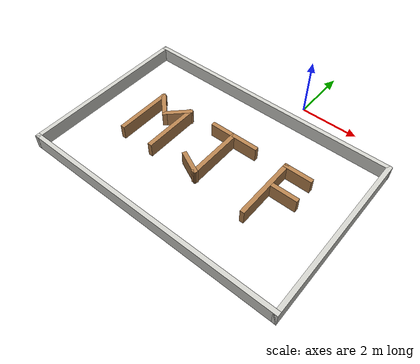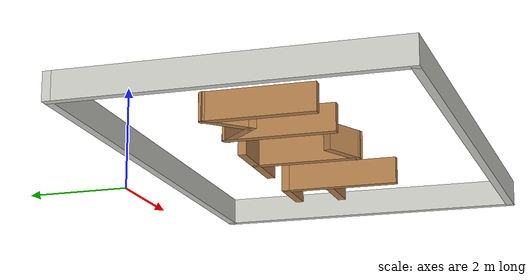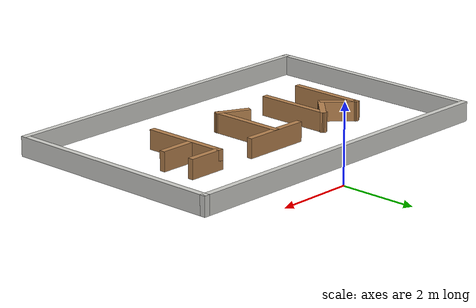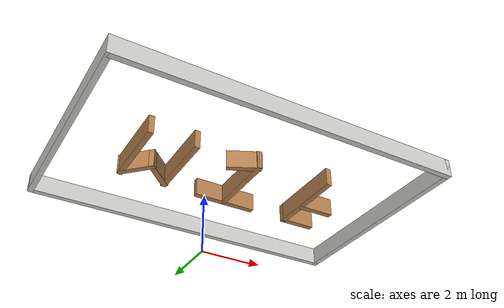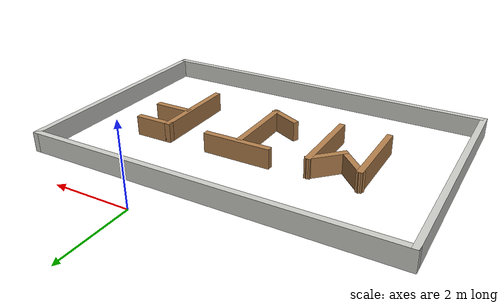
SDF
<?xml version='1.0'?>
<sdf version='1.7'>
  <model name='Maze_3'>
    <pose>-1.01 -3.4425 0 0 -0 0</pose>
    <link name='Wall_0'>
      <collision name='Wall_0_Collision'>
        <geometry>
          <box>
            <size>6 0.15 0.5</size>
          </box>
        </geometry>
        <pose>0 0 0.25 0 -0 0</pose>
      </collision>
      <visual name='Wall_0_Visual'>
        <pose>0 0 0.25 0 -0 0</pose>
        <geometry>
          <box>
            <size>6 0.15 0.5</size>
          </box>
        </geometry>
        <material>
          <script>
            <uri>file://media/materials/scripts/gazebo.material</uri>
            <name>Gazebo/CeilingTiled</name>
          </script>
          <ambient>1 1 1 1</ambient>
        </material>
        <meta>
          <layer>0</layer>
        </meta>
      </visual>
      <pose>-4.55 -0.4425 0 0 -0 -1.5708</pose>
    </link>
    <link name='Wall_1'>
      <collision name='Wall_1_Collision'>
        <geometry>
          <box>
            <size>9.25 0.15 0.5</size>
          </box>
        </geometry>
        <pose>0 0 0.25 0 -0 0</pose>
      </collision>
      <visual name='Wall_1_Visual'>
        <pose>0 0 0.25 0 -0 0</pose>
        <geometry>
          <box>
            <size>9.25 0.15 0.5</size>
          </box>
        </geometry>
        <material>
          <script>
            <uri>file://media/materials/scripts/gazebo.material</uri>
            <name>Gazebo/CeilingTiled</name>
          </script>
          <ambient>1 1 1 1</ambient>
        </material>
        <meta>
          <layer>0</layer>
        </meta>
      </visual>
      <pose>0 -3.3675 0 0 -0 0</pose>
    </link>
    <link name='Wall_18'>
      <collision name='Wall_18_Collision'>
        <geometry>
          <box>
            <size>2 0.15 0.5</size>
          </box>
        </geometry>
        <pose>0 0 0.25 0 -0 0</pose>
      </collision>
      <visual name='Wall_18_Visual'>
        <pose>0 0 0.25 0 -0 0</pose>
        <geometry>
          <box>
            <size>2 0.15 0.5</size>
          </box>
        </geometry>
        <material>
          <script>
            <uri>file://media/materials/scripts/gazebo.material</uri>
            <name>Gazebo/Wood</name>
          </script>
          <ambient>1 1 1 1</ambient>
        </material>
        <meta>
          <layer>0</layer>
        </meta>
      </visual>
      <pose>-2.8 -0.4125 0 0 -0 1.5708</pose>
    </link>
    <link name='Wall_19'>
      <collision name='Wall_19_Collision'>
        <geometry>
          <box>
            <size>1 0.15 0.5</size>
          </box>
        </geometry>
        <pose>0 0 0.25 0 -0 0</pose>
      </collision>
      <visual name='Wall_19_Visual'>
        <pose>0 0 0.25 0 -0 0</pose>
        <geometry>
          <box>
            <size>1 0.15 0.5</size>
          </box>
        </geometry>
        <material>
          <script>
            <uri>file://media/materials/scripts/gazebo.material</uri>
            <name>Gazebo/Wood</name>
          </script>
          <ambient>1 1 1 1</ambient>
        </material>
        <meta>
          <layer>0</layer>
        </meta>
      </visual>
      <pose>-2.4995 0.212 0 0 -0 -0.785398</pose>
    </link>
    <link name='Wall_2'>
      <collision name='Wall_2_Collision'>
        <geometry>
          <box>
            <size>6 0.15 0.5</size>
          </box>
        </geometry>
        <pose>0 0 0.25 0 -0 0</pose>
      </collision>
      <visual name='Wall_2_Visual'>
        <pose>0 0 0.25 0 -0 0</pose>
        <geometry>
          <box>
            <size>6 0.15 0.5</size>
          </box>
        </geometry>
        <material>
          <script>
            <uri>file://media/materials/scripts/gazebo.material</uri>
            <name>Gazebo/CeilingTiled</name>
          </script>
          <ambient>1 1 1 1</ambient>
        </material>
        <meta>
          <layer>0</layer>
        </meta>
      </visual>
      <pose>4.55 -0.4425 0 0 -0 1.5708</pose>
    </link>
    <link name='Wall_20'>
      <collision name='Wall_20_Collision'>
        <geometry>
          <box>
            <size>1 0.15 0.5</size>
          </box>
        </geometry>
        <pose>0 0 0.25 0 -0 0</pose>
      </collision>
      <visual name='Wall_20_Visual'>
        <pose>0 0 0.25 0 -0 0</pose>
        <geometry>
          <box>
            <size>1 0.15 0.5</size>
          </box>
        </geometry>
        <material>
          <script>
            <uri>file://media/materials/scripts/gazebo.material</uri>
            <name>Gazebo/Wood</name>
          </script>
          <ambient>1 1 1 1</ambient>
        </material>
        <meta>
          <layer>0</layer>
        </meta>
      </visual>
      <pose>-1.8985 0.212 0 0 -0 0.785398</pose>
    </link>
    <link name='Wall_21'>
      <collision name='Wall_21_Collision'>
        <geometry>
          <box>
            <size>2 0.15 0.5</size>
          </box>
        </geometry>
        <pose>0 0 0.25 0 -0 0</pose>
      </collision>
      <visual name='Wall_21_Visual'>
        <pose>0 0 0.25 0 -0 0</pose>
        <geometry>
          <box>
            <size>2 0.15 0.5</size>
          </box>
        </geometry>
        <material>
          <script>
            <uri>file://media/materials/scripts/gazebo.material</uri>
            <name>Gazebo/Wood</name>
          </script>
          <ambient>1 1 1 1</ambient>
        </material>
        <meta>
          <layer>0</layer>
        </meta>
      </visual>
      <pose>-1.598 -0.4125 0 0 -0 -1.5708</pose>
    </link>
    <link name='Wall_23'>
      <collision name='Wall_23_Collision'>
        <geometry>
          <box>
            <size>2 0.15 0.5</size>
          </box>
        </geometry>
        <pose>0 0 0.25 0 -0 0</pose>
      </collision>
      <visual name='Wall_23_Visual'>
        <pose>0 0 0.25 0 -0 0</pose>
        <geometry>
          <box>
            <size>2 0.15 0.5</size>
          </box>
        </geometry>
        <material>
          <script>
            <uri>file://media/materials/scripts/gazebo.material</uri>
            <name>Gazebo/Wood</name>
          </script>
          <ambient>1 1 1 1</ambient>
        </material>
        <meta>
          <layer>0</layer>
        </meta>
      </visual>
      <pose>0.17 -0.3825 0 0 -0 -1.5708</pose>
    </link>
    <link name='Wall_25'>
      <collision name='Wall_25_Collision'>
        <geometry>
          <box>
            <size>0.892496 0.15 0.5</size>
          </box>
        </geometry>
        <pose>0 0 0.25 0 -0 0</pose>
      </collision>
      <visual name='Wall_25_Visual'>
        <pose>0 0 0.25 0 -0 0</pose>
        <geometry>
          <box>
            <size>0.892496 0.15 0.5</size>
          </box>
        </geometry>
        <material>
          <script>
            <uri>file://media/materials/scripts/gazebo.material</uri>
            <name>Gazebo/Wood</name>
          </script>
          <ambient>1 1 1 1</ambient>
        </material>
        <meta>
          <layer>0</layer>
        </meta>
      </visual>
      <pose>-0.165 -1.1475 0 0 -0 -0.445577</pose>
    </link>
    <link name='Wall_27'>
      <collision name='Wall_27_Collision'>
        <geometry>
          <box>
            <size>1.75 0.15 0.5</size>
          </box>
        </geometry>
        <pose>0 0 0.25 0 -0 0</pose>
      </collision>
      <visual name='Wall_27_Visual'>
        <pose>0 0 0.25 0 -0 0</pose>
        <geometry>
          <box>
            <size>1.75 0.15 0.5</size>
          </box>
        </geometry>
        <material>
          <script>
            <uri>file://media/materials/scripts/gazebo.material</uri>
            <name>Gazebo/Wood</name>
          </script>
          <ambient>1 1 1 1</ambient>
        </material>
        <meta>
          <layer>0</layer>
        </meta>
      </visual>
      <pose>0.2 0.5625 0 0 -0 0</pose>
    </link>
    <link name='Wall_29'>
      <collision name='Wall_29_Collision'>
        <geometry>
          <box>
            <size>2.25 0.15 0.5</size>
          </box>
        </geometry>
        <pose>0 0 0.25 0 -0 0</pose>
      </collision>
      <visual name='Wall_29_Visual'>
        <pose>0 0 0.25 0 -0 0</pose>
        <geometry>
          <box>
            <size>2.25 0.15 0.5</size>
          </box>
        </geometry>
        <material>
          <script>
            <uri>file://media/materials/scripts/gazebo.material</uri>
            <name>Gazebo/Wood</name>
          </script>
          <ambient>1 1 1 1</ambient>
        </material>
        <meta>
          <layer>0</layer>
        </meta>
      </visual>
      <pose>2.14 -0.4675 0 0 -0 -1.5708</pose>
    </link>
    <link name='Wall_3'>
      <collision name='Wall_3_Collision'>
        <geometry>
          <box>
            <size>9.25 0.15 0.5</size>
          </box>
        </geometry>
        <pose>0 0 0.25 0 -0 0</pose>
      </collision>
      <visual name='Wall_3_Visual'>
        <pose>0 0 0.25 0 -0 0</pose>
        <geometry>
          <box>
            <size>9.25 0.15 0.5</size>
          </box>
        </geometry>
        <material>
          <script>
            <uri>file://media/materials/scripts/gazebo.material</uri>
            <name>Gazebo/CeilingTiled</name>
          </script>
          <ambient>1 1 1 1</ambient>
        </material>
        <meta>
          <layer>0</layer>
        </meta>
      </visual>
      <pose>0 2.4825 0 0 -0 3.14159</pose>
    </link>
    <link name='Wall_31'>
      <collision name='Wall_31_Collision'>
        <geometry>
          <box>
            <size>1 0.15 0.5</size>
          </box>
        </geometry>
        <pose>0 0 0.25 0 -0 0</pose>
      </collision>
      <visual name='Wall_31_Visual'>
        <pose>0 0 0.25 0 -0 0</pose>
        <geometry>
          <box>
            <size>1 0.15 0.5</size>
          </box>
        </geometry>
        <material>
          <script>
            <uri>file://media/materials/scripts/gazebo.material</uri>
            <name>Gazebo/Wood</name>
          </script>
          <ambient>1 1 1 1</ambient>
        </material>
        <meta>
          <layer>0</layer>
        </meta>
      </visual>
      <pose>2.565 0.5825 0 0 -0 0</pose>
    </link>
    <link name='Wall_33'>
      <collision name='Wall_33_Collision'>
        <geometry>
          <box>
            <size>1 0.15 0.5</size>
          </box>
        </geometry>
        <pose>0 0 0.25 0 -0 0</pose>
      </collision>
      <visual name='Wall_33_Visual'>
        <pose>0 0 0.25 0 -0 0</pose>
        <geometry>
          <box>
            <size>1 0.15 0.5</size>
          </box>
        </geometry>
        <material>
          <script>
            <uri>file://media/materials/scripts/gazebo.material</uri>
            <name>Gazebo/Wood</name>
          </script>
          <ambient>1 1 1 1</ambient>
        </material>
        <meta>
          <layer>0</layer>
        </meta>
      </visual>
      <pose>2.625 -0.2675 0 0 -0 0</pose>
    </link>
    <static>1</static>
  </model>
</sdf>
